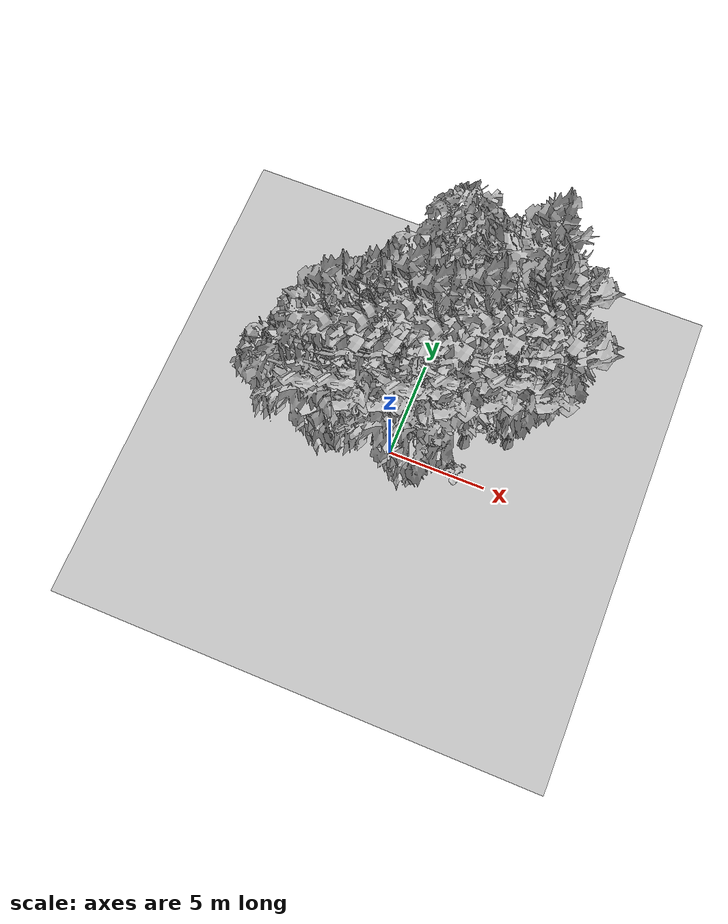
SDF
<sdf version="1.7">
 <world name="default">
  <model name="ground_plane">
   <static>1</static>
   <link name="link">
    <collision name="collision">
     <pose>-50 0 0 0 -0 0</pose>
     <geometry><plane><normal>0 0 1</normal><size>80 80</size></plane></geometry>
     <surface><contact><ode><min_depth>0.01</min_depth><max_vel>0</max_vel></ode></contact></surface>
    </collision>
    <visual name="grass">
     <cast_shadows>0</cast_shadows>
     <geometry>
      <mesh>
       <scale>0.46714285714285714 0.46714285714285714 0.1</scale>
       <uri>file://grass_plane/meshes/grass_plane.dae</uri>
      </mesh>
     </geometry>
    </visual>
   </link>
  </model>
  <model name="Tree 58">
   <static>1</static>
   <pose>4.563300740273917 5.045299819119364 0 1.57079 -0 0</pose>
   <link name="link">
    <collision name="collision">
     <geometry><mesh><scale>3.5 5 3.5</scale><uri>model://tree_9/meshes/tree_9.obj</uri></mesh></geometry>
    </collision>
    <visual name="visual">
     <geometry><mesh><scale>3.5 5 3.5</scale><uri>model://tree_9/meshes/tree_9.obj</uri></mesh></geometry>
    </visual>
   </link>
  </model>
  <model name="Tree 120">
   <static>1</static>
   <pose>1.5862976587108193 5.17929715948916 0 1.57079 -0 0</pose>
   <link name="link">
    <collision name="collision">
     <geometry><mesh><scale>3.5 5 3.5</scale><uri>model://tree_2/meshes/tree_2.obj</uri></mesh></geometry>
    </collision>
    <visual name="visual">
     <geometry><mesh><scale>3.5 5 3.5</scale><uri>model://tree_2/meshes/tree_2.obj</uri></mesh></geometry>
    </visual>
   </link>
  </model>
  <model name="Tree 148">
   <static>1</static>
   <pose>0.5650114110110707 0.17522997327483125 0 1.57079 -0 0</pose>
   <link name="link">
    <collision name="collision">
     <geometry><mesh><scale>3.5 5 3.5</scale><uri>model://tree_2/meshes/tree_2.obj</uri></mesh></geometry>
    </collision>
    <visual name="visual">
     <geometry><mesh><scale>3.5 5 3.5</scale><uri>model://tree_2/meshes/tree_2.obj</uri></mesh></geometry>
    </visual>
   </link>
  </model>
  <model name="Tree 256">
   <static>1</static>
   <pose>-2.045040851395214 -0.2576273539464182 0 1.57079 -0 0</pose>
   <link name="link">
    <collision name="collision">
     <geometry><mesh><scale>3.5 5 3.5</scale><uri>model://tree_9/meshes/tree_9.obj</uri></mesh></geometry>
    </collision>
    <visual name="visual">
     <geometry><mesh><scale>3.5 5 3.5</scale><uri>model://tree_9/meshes/tree_9.obj</uri></mesh></geometry>
    </visual>
   </link>
  </model>
  <model name="Tree 267">
   <static>1</static>
   <pose>-3.248317853654825 0.3679355221861087 0 1.57079 -0 0</pose>
   <link name="link">
    <collision name="collision">
     <geometry><mesh><scale>3.5 5 3.5</scale><uri>model://tree_2/meshes/tree_2.obj</uri></mesh></geometry>
    </collision>
    <visual name="visual">
     <geometry><mesh><scale>3.5 5 3.5</scale><uri>model://tree_2/meshes/tree_2.obj</uri></mesh></geometry>
    </visual>
   </link>
  </model>
  <model name="Tree 312">
   <static>1</static>
   <pose>5.201395766348583 2.8876290225161654 0 1.57079 -0 0</pose>
   <link name="link">
    <collision name="collision">
     <geometry><mesh><scale>3.5 5 3.5</scale><uri>model://tree_9/meshes/tree_9.obj</uri></mesh></geometry>
    </collision>
    <visual name="visual">
     <geometry><mesh><scale>3.5 5 3.5</scale><uri>model://tree_9/meshes/tree_9.obj</uri></mesh></geometry>
    </visual>
   </link>
  </model>
  <model name="Tree 350">
   <static>1</static>
   <pose>5.3199537341071945 2.56079646300244 0 1.57079 -0 0</pose>
   <link name="link">
    <collision name="collision">
     <geometry><mesh><scale>3.5 5 3.5</scale><uri>model://tree_9/meshes/tree_9.obj</uri></mesh></geometry>
    </collision>
    <visual name="visual">
     <geometry><mesh><scale>3.5 5 3.5</scale><uri>model://tree_9/meshes/tree_9.obj</uri></mesh></geometry>
    </visual>
   </link>
  </model>
  <model name="Tree 380">
   <static>1</static>
   <pose>-2.5354733777803276 1.476891263286113 0 1.57079 -0 0</pose>
   <link name="link">
    <collision name="collision">
     <geometry><mesh><scale>3.5 5 3.5</scale><uri>model://tree_2/meshes/tree_2.obj</uri></mesh></geometry>
    </collision>
    <visual name="visual">
     <geometry><mesh><scale>3.5 5 3.5</scale><uri>model://tree_2/meshes/tree_2.obj</uri></mesh></geometry>
    </visual>
   </link>
  </model>
  <model name="Tree 409">
   <static>1</static>
   <pose>-0.7967575013543922 0.1864077710783647 0 1.57079 -0 0</pose>
   <link name="link">
    <collision name="collision">
     <geometry><mesh><scale>3.5 5 3.5</scale><uri>model://tree_9/meshes/tree_9.obj</uri></mesh></geometry>
    </collision>
    <visual name="visual">
     <geometry><mesh><scale>3.5 5 3.5</scale><uri>model://tree_9/meshes/tree_9.obj</uri></mesh></geometry>
    </visual>
   </link>
  </model>
  <model name="Tree 426">
   <static>1</static>
   <pose>-0.7125574464412239 0.6659575335468162 0 1.57079 -0 0</pose>
   <link name="link">
    <collision name="collision">
     <geometry><mesh><scale>3.5 5 3.5</scale><uri>model://tree_9/meshes/tree_9.obj</uri></mesh></geometry>
    </collision>
    <visual name="visual">
     <geometry><mesh><scale>3.5 5 3.5</scale><uri>model://tree_9/meshes/tree_9.obj</uri></mesh></geometry>
    </visual>
   </link>
  </model>
  <model name="Tree 476">
   <static>1</static>
   <pose>3.2857412764475384 1.7801524402144864 0 1.57079 -0 0</pose>
   <link name="link">
    <collision name="collision">
     <geometry><mesh><scale>3.5 5 3.5</scale><uri>model://tree_9/meshes/tree_9.obj</uri></mesh></geometry>
    </collision>
    <visual name="visual">
     <geometry><mesh><scale>3.5 5 3.5</scale><uri>model://tree_9/meshes/tree_9.obj</uri></mesh></geometry>
    </visual>
   </link>
  </model>
  <model name="Tree 539">
   <static>1</static>
   <pose>1.7105036733249719 0.8657101490556443 0 1.57079 -0 0</pose>
   <link name="link">
    <collision name="collision">
     <geometry><mesh><scale>3.5 5 3.5</scale><uri>model://tree_9/meshes/tree_9.obj</uri></mesh></geometry>
    </collision>
    <visual name="visual">
     <geometry><mesh><scale>3.5 5 3.5</scale><uri>model://tree_9/meshes/tree_9.obj</uri></mesh></geometry>
    </visual>
   </link>
  </model>
  <model name="Tree 545">
   <static>1</static>
   <pose>1.0196576910336077 6.862286650601263 0 1.57079 -0 0</pose>
   <link name="link">
    <collision name="collision">
     <geometry><mesh><scale>3.5 5 3.5</scale><uri>model://tree_2/meshes/tree_2.obj</uri></mesh></geometry>
    </collision>
    <visual name="visual">
     <geometry><mesh><scale>3.5 5 3.5</scale><uri>model://tree_2/meshes/tree_2.obj</uri></mesh></geometry>
    </visual>
   </link>
  </model>
  <model name="Tree 574">
   <static>1</static>
   <pose>4.12293107588436 3.91023200084517 0 1.57079 -0 0</pose>
   <link name="link">
    <collision name="collision">
     <geometry><mesh><scale>3.5 5 3.5</scale><uri>model://tree_2/meshes/tree_2.obj</uri></mesh></geometry>
    </collision>
    <visual name="visual">
     <geometry><mesh><scale>3.5 5 3.5</scale><uri>model://tree_2/meshes/tree_2.obj</uri></mesh></geometry>
    </visual>
   </link>
  </model>
  <model name="Tree 620">
   <static>1</static>
   <pose>0.6260756538424204 1.271849545726937 0 1.57079 -0 0</pose>
   <link name="link">
    <collision name="collision">
     <geometry><mesh><scale>3.5 5 3.5</scale><uri>model://tree_9/meshes/tree_9.obj</uri></mesh></geometry>
    </collision>
    <visual name="visual">
     <geometry><mesh><scale>3.5 5 3.5</scale><uri>model://tree_9/meshes/tree_9.obj</uri></mesh></geometry>
    </visual>
   </link>
  </model>
  <model name="Bush 71">
   <static>1</static>
   <pose>3.3500566460336074 0.028836092599604513 0 1.57079 -0 0</pose>
   <link name="link">
    <collision name="collision">
     <geometry><mesh><scale>2 2 2</scale><uri>model://bush_0/meshes/bush_0.obj</uri></mesh></geometry>
     <surface><contact><collide_without_contact>false</collide_without_contact></contact></surface>
    </collision>
    <visual name="visual">
     <geometry><mesh><scale>2 2 2</scale><uri>model://bush_0/meshes/bush_0.obj</uri></mesh></geometry>
    </visual>
   </link>
  </model>
  <model name="Bush 255">
   <static>1</static>
   <pose>4.328196950836336 8.104372519237835 0 1.57079 -0 0</pose>
   <link name="link">
    <collision name="collision">
     <geometry><mesh><scale>2 2 2</scale><uri>model://bush_2/meshes/bush_2.obj</uri></mesh></geometry>
     <surface><contact><collide_without_contact>false</collide_without_contact></contact></surface>
    </collision>
    <visual name="visual">
     <geometry><mesh><scale>2 2 2</scale><uri>model://bush_2/meshes/bush_2.obj</uri></mesh></geometry>
    </visual>
   </link>
  </model>
  <model name="Bush 300">
   <static>1</static>
   <pose>3.0203850052279435 5.942427147575856 0 1.57079 -0 0</pose>
   <link name="link">
    <collision name="collision">
     <geometry><mesh><scale>2 2 2</scale><uri>model://bush_2/meshes/bush_2.obj</uri></mesh></geometry>
     <surface><contact><collide_without_contact>false</collide_without_contact></contact></surface>
    </collision>
    <visual name="visual">
     <geometry><mesh><scale>2 2 2</scale><uri>model://bush_2/meshes/bush_2.obj</uri></mesh></geometry>
    </visual>
   </link>
  </model>
  <model name="Bush 309">
   <static>1</static>
   <pose>4.3575985542909805 2.833738024348804 0 1.57079 -0 0</pose>
   <link name="link">
    <collision name="collision">
     <geometry><mesh><scale>2 2 2</scale><uri>model://bush_2/meshes/bush_2.obj</uri></mesh></geometry>
     <surface><contact><collide_without_contact>false</collide_without_contact></contact></surface>
    </collision>
    <visual name="visual">
     <geometry><mesh><scale>2 2 2</scale><uri>model://bush_2/meshes/bush_2.obj</uri></mesh></geometry>
    </visual>
   </link>
  </model>
  <model name="Bush 334">
   <static>1</static>
   <pose>2.854222927959306 3.045927068552558 0 1.57079 -0 0</pose>
   <link name="link">
    <collision name="collision">
     <geometry><mesh><scale>2 2 2</scale><uri>model://bush_0/meshes/bush_0.obj</uri></mesh></geometry>
     <surface><contact><collide_without_contact>false</collide_without_contact></contact></surface>
    </collision>
    <visual name="visual">
     <geometry><mesh><scale>2 2 2</scale><uri>model://bush_0/meshes/bush_0.obj</uri></mesh></geometry>
    </visual>
   </link>
  </model>
  <model name="Bush 430">
   <static>1</static>
   <pose>2.815615012074389 3.7383380652958778 0 1.57079 -0 0</pose>
   <link name="link">
    <collision name="collision">
     <geometry><mesh><scale>2 2 2</scale><uri>model://bush_2/meshes/bush_2.obj</uri></mesh></geometry>
     <surface><contact><collide_without_contact>false</collide_without_contact></contact></surface>
    </collision>
    <visual name="visual">
     <geometry><mesh><scale>2 2 2</scale><uri>model://bush_2/meshes/bush_2.obj</uri></mesh></geometry>
    </visual>
   </link>
  </model>
  <model name="Bush 542">
   <static>1</static>
   <pose>2.20321188188975 6.55407281132932 0 1.57079 -0 0</pose>
   <link name="link">
    <collision name="collision">
     <geometry><mesh><scale>2 2 2</scale><uri>model://bush_4/meshes/bush_4.obj</uri></mesh></geometry>
     <surface><contact><collide_without_contact>false</collide_without_contact></contact></surface>
    </collision>
    <visual name="visual">
     <geometry><mesh><scale>2 2 2</scale><uri>model://bush_4/meshes/bush_4.obj</uri></mesh></geometry>
    </visual>
   </link>
  </model>
  <model name="Bush 578">
   <static>1</static>
   <pose>1.1587454171436633 3.831990488632144 0 1.57079 -0 0</pose>
   <link name="link">
    <collision name="collision">
     <geometry><mesh><scale>2 2 2</scale><uri>model://bush_2/meshes/bush_2.obj</uri></mesh></geometry>
     <surface><contact><collide_without_contact>false</collide_without_contact></contact></surface>
    </collision>
    <visual name="visual">
     <geometry><mesh><scale>2 2 2</scale><uri>model://bush_2/meshes/bush_2.obj</uri></mesh></geometry>
    </visual>
   </link>
  </model>
  <model name="Bush 583">
   <static>1</static>
   <pose>4.869517429434083 3.9191160088163883 0 1.57079 -0 0</pose>
   <link name="link">
    <collision name="collision">
     <geometry><mesh><scale>2 2 2</scale><uri>model://bush_2/meshes/bush_2.obj</uri></mesh></geometry>
     <surface><contact><collide_without_contact>false</collide_without_contact></contact></surface>
    </collision>
    <visual name="visual">
     <geometry><mesh><scale>2 2 2</scale><uri>model://bush_2/meshes/bush_2.obj</uri></mesh></geometry>
    </visual>
   </link>
  </model>
 </world>
</sdf>
